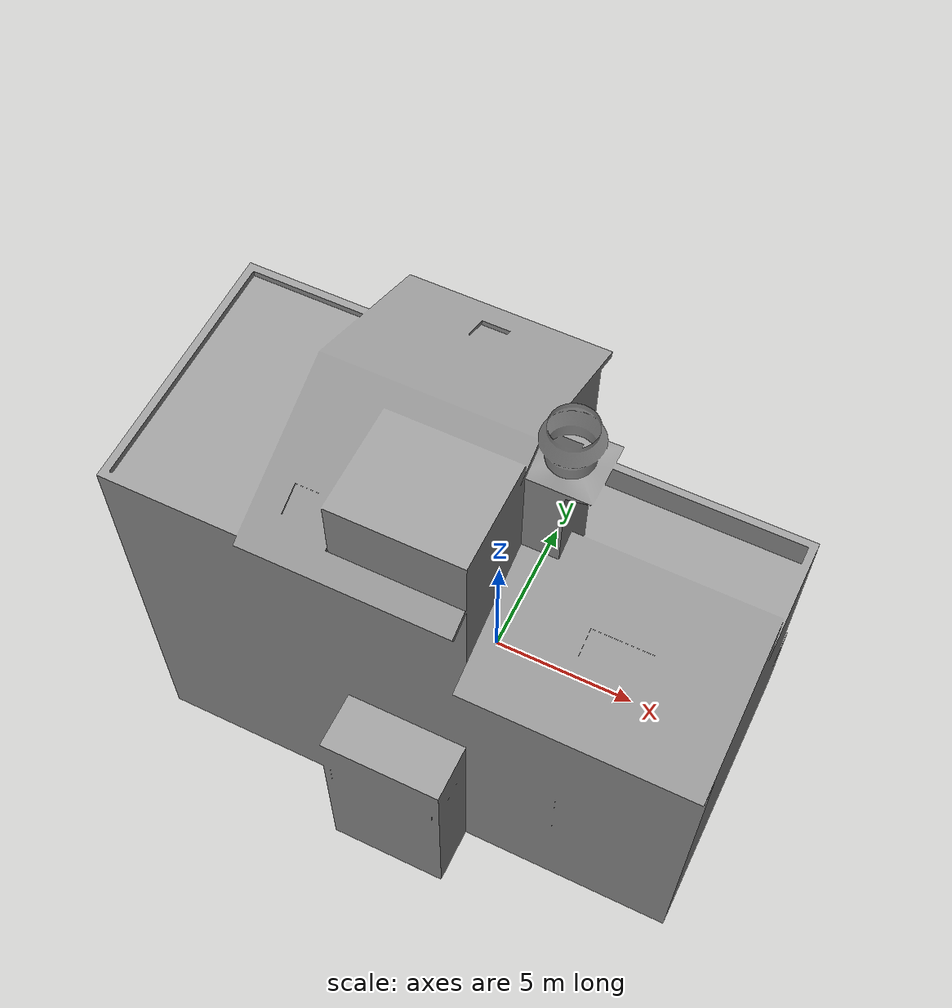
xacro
<?xml version="1.0"?>
<!-- Kinematic model, simplified visual, no collisions -->
<robot name="lab" xmlns:xacro="http://www.ros.org/wiki/xacro">
<xacro:include filename="$(find atlas_config_celidon)/visualization/materials.xacro" />

  <link name="base_link">
   <visual>
      <geometry>
        <mesh scale=".001 .001 .001" filename="file://$(find atlas_config_celidon)/visualization/abz.stl"/>
      </geometry>
      <origin xyz="-10 -5 -4"/>
      <material name="Grey"/>
   </visual>
  </link>
</robot>

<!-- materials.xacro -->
<material name="Grey">
	<color rgba="${250/255} ${250/255} ${250/255} 1.0"/>
</material>
